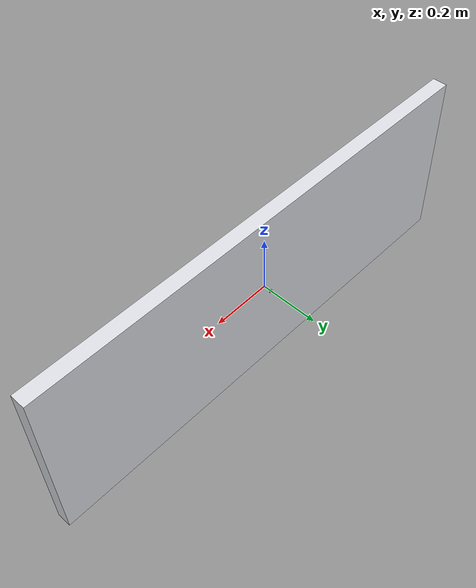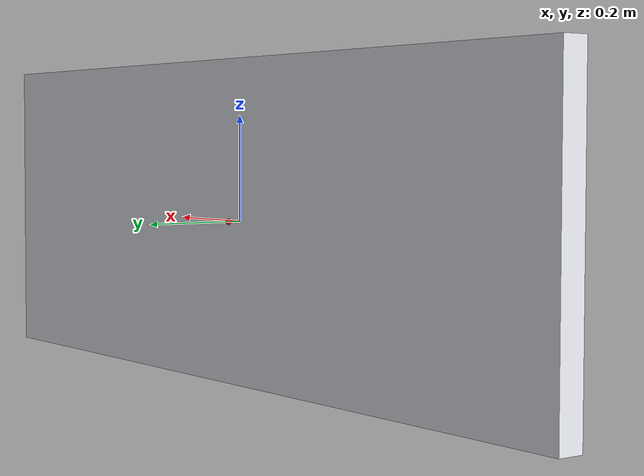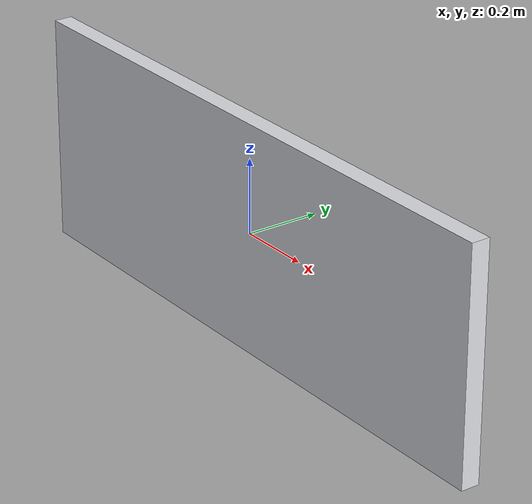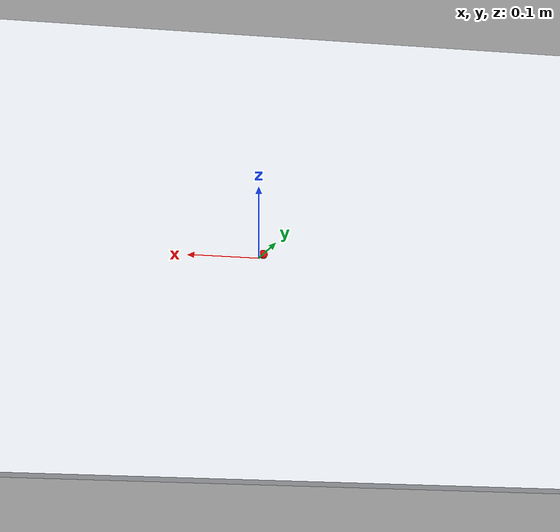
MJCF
<mujoco model="w2_b2_panel_base">
  <worldbody>
    <body name="panel_mount" pos="0 0 0">
      <geom
        name="panel_backplate"
        type="box"
        pos="0 0 0"
        size="0.845 0.025 0.308"
        rgba="0.86 0.87 0.89 1"
        contype="1"
        conaffinity="1"
      />
      <site name="panel_origin" pos="0 0.025 0" size="0.006" rgba="1 0 0 1"/>
    </body>
  </worldbody>
</mujoco>
